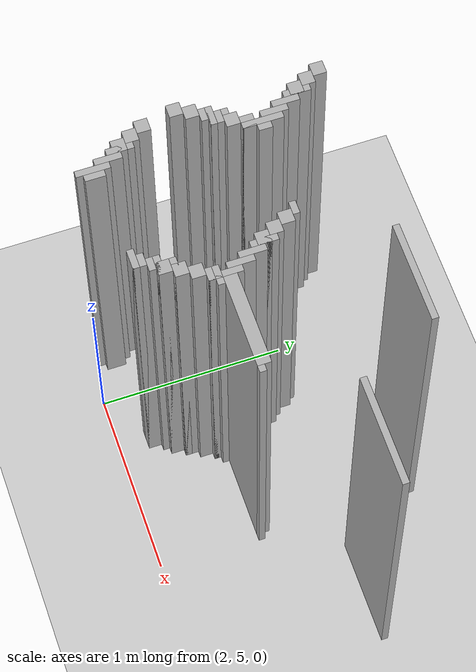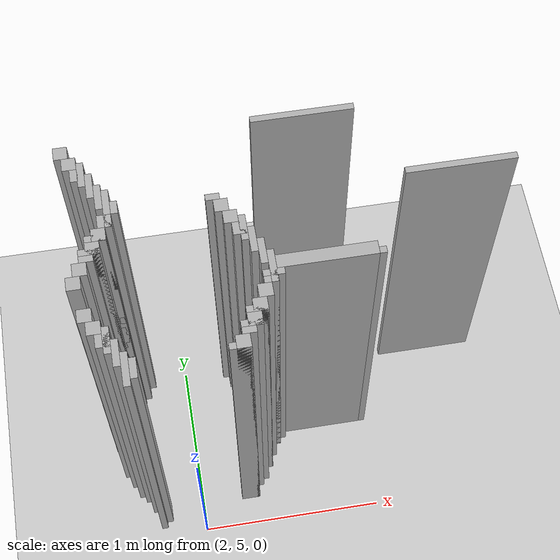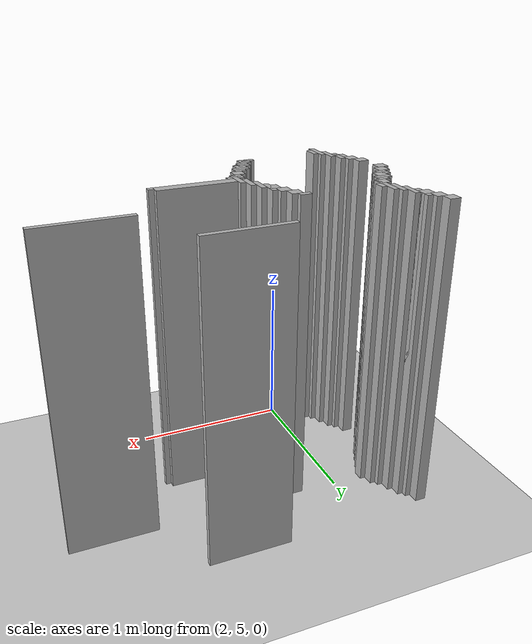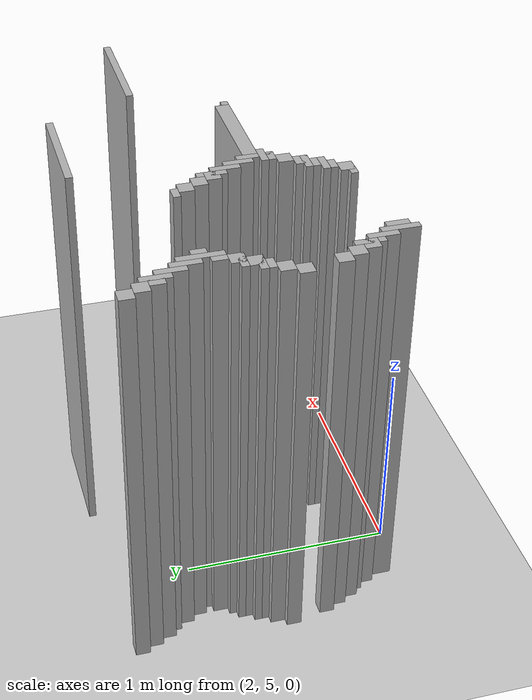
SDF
<sdf version="1.6">
 <world name="slam_world">
  <model name="ground_plane">
   <static>true</static>
   <link name="link">
    <collision name="collision">
     <geometry><plane><normal>0 0 1</normal><size>100 100</size></plane></geometry>
    </collision>
    <visual name="visual">
     <geometry><plane><normal>0 0 1</normal><size>100 100</size></plane></geometry>
     <material>
      <ambient>0.8 0.8 0.8 1</ambient>
      <diffuse>0.8 0.8 0.8 1</diffuse>
      <specular>0.8 0.8 0.8 1</specular>
     </material>
    </visual>
   </link>
  </model>
  <model name="wall_3612">
   <static>true</static>
   <pose>2.7668213457076565 6.386310904872389 1.0 0 0 0</pose>
   <link name="link">
    <collision name="collision">
     <geometry><box><size>0.5220417633410672 0.03480278422273782 2.0</size></box></geometry>
    </collision>
    <visual name="visual">
     <geometry><box><size>0.5220417633410672 0.03480278422273782 2.0</size></box></geometry>
     <material><ambient>0.5 0.5 0.5 1</ambient><diffuse>0.7 0.7 0.7 1</diffuse></material>
    </visual>
   </link>
  </model>
  <model name="wall_3622">
   <static>true</static>
   <pose>1.5661252900232019 6.334106728538282 1.0 0 0 0</pose>
   <link name="link">
    <collision name="collision">
     <geometry><box><size>0.06960556844547564 0.06960556844547564 2.0</size></box></geometry>
    </collision>
    <visual name="visual">
     <geometry><box><size>0.06960556844547564 0.06960556844547564 2.0</size></box></geometry>
     <material><ambient>0.5 0.5 0.5 1</ambient><diffuse>0.7 0.7 0.7 1</diffuse></material>
    </visual>
   </link>
  </model>
  <model name="wall_3644">
   <static>true</static>
   <pose>1.6009280742459395 6.2645011600928076 1.0 0 0 0</pose>
   <link name="link">
    <collision name="collision">
     <geometry><box><size>0.06960556844547564 0.06960556844547564 2.0</size></box></geometry>
    </collision>
    <visual name="visual">
     <geometry><box><size>0.06960556844547564 0.06960556844547564 2.0</size></box></geometry>
     <material><ambient>0.5 0.5 0.5 1</ambient><diffuse>0.7 0.7 0.7 1</diffuse></material>
    </visual>
   </link>
  </model>
  <model name="wall_3657">
   <static>true</static>
   <pose>1.6531322505800463 6.194895591647332 1.0 0 0 0</pose>
   <link name="link">
    <collision name="collision">
     <geometry><box><size>0.03480278422273782 0.13921113689095127 2.0</size></box></geometry>
    </collision>
    <visual name="visual">
     <geometry><box><size>0.03480278422273782 0.13921113689095127 2.0</size></box></geometry>
     <material><ambient>0.5 0.5 0.5 1</ambient><diffuse>0.7 0.7 0.7 1</diffuse></material>
    </visual>
   </link>
  </model>
  <model name="wall_3670">
   <static>true</static>
   <pose>1.6357308584686774 6.194895591647332 1.0 0 0 0</pose>
   <link name="link">
    <collision name="collision">
     <geometry><box><size>0.06960556844547564 0.06960556844547564 2.0</size></box></geometry>
    </collision>
    <visual name="visual">
     <geometry><box><size>0.06960556844547564 0.06960556844547564 2.0</size></box></geometry>
     <material><ambient>0.5 0.5 0.5 1</ambient><diffuse>0.7 0.7 0.7 1</diffuse></material>
    </visual>
   </link>
  </model>
  <model name="wall_3683">
   <static>true</static>
   <pose>1.6879350348027842 6.125290023201856 1.0 0 0 0</pose>
   <link name="link">
    <collision name="collision">
     <geometry><box><size>0.03480278422273782 0.13921113689095127 2.0</size></box></geometry>
    </collision>
    <visual name="visual">
     <geometry><box><size>0.03480278422273782 0.13921113689095127 2.0</size></box></geometry>
     <material><ambient>0.5 0.5 0.5 1</ambient><diffuse>0.7 0.7 0.7 1</diffuse></material>
    </visual>
   </link>
  </model>
  <model name="wall_3701">
   <static>true</static>
   <pose>1.722737819025522 6.05568445475638 1.0 0 0 0</pose>
   <link name="link">
    <collision name="collision">
     <geometry><box><size>0.03480278422273782 0.13921113689095127 2.0</size></box></geometry>
    </collision>
    <visual name="visual">
     <geometry><box><size>0.03480278422273782 0.13921113689095127 2.0</size></box></geometry>
     <material><ambient>0.5 0.5 0.5 1</ambient><diffuse>0.7 0.7 0.7 1</diffuse></material>
    </visual>
   </link>
  </model>
  <model name="wall_3714">
   <static>true</static>
   <pose>1.75754060324826 5.986078886310905 1.0 0 0 0</pose>
   <link name="link">
    <collision name="collision">
     <geometry><box><size>0.03480278422273782 0.2088167053364269 2.0</size></box></geometry>
    </collision>
    <visual name="visual">
     <geometry><box><size>0.03480278422273782 0.2088167053364269 2.0</size></box></geometry>
     <material><ambient>0.5 0.5 0.5 1</ambient><diffuse>0.7 0.7 0.7 1</diffuse></material>
    </visual>
   </link>
  </model>
  <model name="wall_3732">
   <static>true</static>
   <pose>1.7923433874709975 5.986078886310905 1.0 0 0 0</pose>
   <link name="link">
    <collision name="collision">
     <geometry><box><size>0.03480278422273782 0.06960556844547564 2.0</size></box></geometry>
    </collision>
    <visual name="visual">
     <geometry><box><size>0.03480278422273782 0.06960556844547564 2.0</size></box></geometry>
     <material><ambient>0.5 0.5 0.5 1</ambient><diffuse>0.7 0.7 0.7 1</diffuse></material>
    </visual>
   </link>
  </model>
  <model name="wall_3743">
   <static>true</static>
   <pose>2.262180974477958 5.968677494199536 1.0 0 0 0</pose>
   <link name="link">
    <collision name="collision">
     <geometry><box><size>0.06960556844547564 0.03480278422273782 2.0</size></box></geometry>
    </collision>
    <visual name="visual">
     <geometry><box><size>0.06960556844547564 0.03480278422273782 2.0</size></box></geometry>
     <material><ambient>0.5 0.5 0.5 1</ambient><diffuse>0.7 0.7 0.7 1</diffuse></material>
    </visual>
   </link>
  </model>
  <model name="wall_3744">
   <static>true</static>
   <pose>3.480278422273782 5.968677494199536 1.0 0 0 0</pose>
   <link name="link">
    <collision name="collision">
     <geometry><box><size>0.5568445475638051 0.03480278422273782 2.0</size></box></geometry>
    </collision>
    <visual name="visual">
     <geometry><box><size>0.5568445475638051 0.03480278422273782 2.0</size></box></geometry>
     <material><ambient>0.5 0.5 0.5 1</ambient><diffuse>0.7 0.7 0.7 1</diffuse></material>
    </visual>
   </link>
  </model>
  <model name="wall_3753">
   <static>true</static>
   <pose>1.740139211136891 5.916473317865429 1.0 0 0 0</pose>
   <link name="link">
    <collision name="collision">
     <geometry><box><size>0.06960556844547564 0.06960556844547564 2.0</size></box></geometry>
    </collision>
    <visual name="visual">
     <geometry><box><size>0.06960556844547564 0.06960556844547564 2.0</size></box></geometry>
     <material><ambient>0.5 0.5 0.5 1</ambient><diffuse>0.7 0.7 0.7 1</diffuse></material>
    </visual>
   </link>
  </model>
  <model name="wall_3754">
   <static>true</static>
   <pose>2.296983758700696 5.916473317865429 1.0 0 0 0</pose>
   <link name="link">
    <collision name="collision">
     <geometry><box><size>0.06960556844547564 0.06960556844547564 2.0</size></box></geometry>
    </collision>
    <visual name="visual">
     <geometry><box><size>0.06960556844547564 0.06960556844547564 2.0</size></box></geometry>
     <material><ambient>0.5 0.5 0.5 1</ambient><diffuse>0.7 0.7 0.7 1</diffuse></material>
    </visual>
   </link>
  </model>
  <model name="wall_3772">
   <static>true</static>
   <pose>1.705336426914153 5.846867749419953 1.0 0 0 0</pose>
   <link name="link">
    <collision name="collision">
     <geometry><box><size>0.06960556844547564 0.06960556844547564 2.0</size></box></geometry>
    </collision>
    <visual name="visual">
     <geometry><box><size>0.06960556844547564 0.06960556844547564 2.0</size></box></geometry>
     <material><ambient>0.5 0.5 0.5 1</ambient><diffuse>0.7 0.7 0.7 1</diffuse></material>
    </visual>
   </link>
  </model>
  <model name="wall_3773">
   <static>true</static>
   <pose>2.331786542923434 5.846867749419953 1.0 0 0 0</pose>
   <link name="link">
    <collision name="collision">
     <geometry><box><size>0.06960556844547564 0.06960556844547564 2.0</size></box></geometry>
    </collision>
    <visual name="visual">
     <geometry><box><size>0.06960556844547564 0.06960556844547564 2.0</size></box></geometry>
     <material><ambient>0.5 0.5 0.5 1</ambient><diffuse>0.7 0.7 0.7 1</diffuse></material>
    </visual>
   </link>
  </model>
  <model name="wall_3785">
   <static>true</static>
   <pose>1.6879350348027842 5.8294663573085845 1.0 0 0 0</pose>
   <link name="link">
    <collision name="collision">
     <geometry><box><size>0.10440835266821345 0.03480278422273782 2.0</size></box></geometry>
    </collision>
    <visual name="visual">
     <geometry><box><size>0.10440835266821345 0.03480278422273782 2.0</size></box></geometry>
     <material><ambient>0.5 0.5 0.5 1</ambient><diffuse>0.7 0.7 0.7 1</diffuse></material>
    </visual>
   </link>
  </model>
  <model name="wall_3786">
   <static>true</static>
   <pose>2.3839907192575405 5.7772621809744775 1.0 0 0 0</pose>
   <link name="link">
    <collision name="collision">
     <geometry><box><size>0.03480278422273782 0.13921113689095127 2.0</size></box></geometry>
    </collision>
    <visual name="visual">
     <geometry><box><size>0.03480278422273782 0.13921113689095127 2.0</size></box></geometry>
     <material><ambient>0.5 0.5 0.5 1</ambient><diffuse>0.7 0.7 0.7 1</diffuse></material>
    </visual>
   </link>
  </model>
  <model name="wall_3798">
   <static>true</static>
   <pose>1.6705336426914152 5.7772621809744775 1.0 0 0 0</pose>
   <link name="link">
    <collision name="collision">
     <geometry><box><size>0.06960556844547564 0.06960556844547564 2.0</size></box></geometry>
    </collision>
    <visual name="visual">
     <geometry><box><size>0.06960556844547564 0.06960556844547564 2.0</size></box></geometry>
     <material><ambient>0.5 0.5 0.5 1</ambient><diffuse>0.7 0.7 0.7 1</diffuse></material>
    </visual>
   </link>
  </model>
  <model name="wall_3799">
   <static>true</static>
   <pose>2.3665893271461718 5.7772621809744775 1.0 0 0 0</pose>
   <link name="link">
    <collision name="collision">
     <geometry><box><size>0.06960556844547564 0.06960556844547564 2.0</size></box></geometry>
    </collision>
    <visual name="visual">
     <geometry><box><size>0.06960556844547564 0.06960556844547564 2.0</size></box></geometry>
     <material><ambient>0.5 0.5 0.5 1</ambient><diffuse>0.7 0.7 0.7 1</diffuse></material>
    </visual>
   </link>
  </model>
  <model name="wall_3810">
   <static>true</static>
   <pose>1.6531322505800463 5.759860788863109 1.0 0 0 0</pose>
   <link name="link">
    <collision name="collision">
     <geometry><box><size>0.10440835266821345 0.03480278422273782 2.0</size></box></geometry>
    </collision>
    <visual name="visual">
     <geometry><box><size>0.10440835266821345 0.03480278422273782 2.0</size></box></geometry>
     <material><ambient>0.5 0.5 0.5 1</ambient><diffuse>0.7 0.7 0.7 1</diffuse></material>
    </visual>
   </link>
  </model>
  <model name="wall_3811">
   <static>true</static>
   <pose>2.4187935034802783 5.707656612529002 1.0 0 0 0</pose>
   <link name="link">
    <collision name="collision">
     <geometry><box><size>0.03480278422273782 0.13921113689095127 2.0</size></box></geometry>
    </collision>
    <visual name="visual">
     <geometry><box><size>0.03480278422273782 0.13921113689095127 2.0</size></box></geometry>
     <material><ambient>0.5 0.5 0.5 1</ambient><diffuse>0.7 0.7 0.7 1</diffuse></material>
    </visual>
   </link>
  </model>
  <model name="wall_3823">
   <static>true</static>
   <pose>1.6357308584686774 5.725058004640371 1.0 0 0 0</pose>
   <link name="link">
    <collision name="collision">
     <geometry><box><size>0.06960556844547564 0.03480278422273782 2.0</size></box></geometry>
    </collision>
    <visual name="visual">
     <geometry><box><size>0.06960556844547564 0.03480278422273782 2.0</size></box></geometry>
     <material><ambient>0.5 0.5 0.5 1</ambient><diffuse>0.7 0.7 0.7 1</diffuse></material>
    </visual>
   </link>
  </model>
  <model name="wall_3829">
   <static>true</static>
   <pose>1.6009280742459395 5.672853828306264 1.0 0 0 0</pose>
   <link name="link">
    <collision name="collision">
     <geometry><box><size>0.06960556844547564 0.06960556844547564 2.0</size></box></geometry>
    </collision>
    <visual name="visual">
     <geometry><box><size>0.06960556844547564 0.06960556844547564 2.0</size></box></geometry>
     <material><ambient>0.5 0.5 0.5 1</ambient><diffuse>0.7 0.7 0.7 1</diffuse></material>
    </visual>
   </link>
  </model>
  <model name="wall_3830">
   <static>true</static>
   <pose>2.453596287703016 5.638051044083526 1.0 0 0 0</pose>
   <link name="link">
    <collision name="collision">
     <geometry><box><size>0.03480278422273782 0.13921113689095127 2.0</size></box></geometry>
    </collision>
    <visual name="visual">
     <geometry><box><size>0.03480278422273782 0.13921113689095127 2.0</size></box></geometry>
     <material><ambient>0.5 0.5 0.5 1</ambient><diffuse>0.7 0.7 0.7 1</diffuse></material>
    </visual>
   </link>
  </model>
  <model name="wall_3842">
   <static>true</static>
   <pose>1.5661252900232019 5.603248259860789 1.0 0 0 0</pose>
   <link name="link">
    <collision name="collision">
     <geometry><box><size>0.06960556844547564 0.06960556844547564 2.0</size></box></geometry>
    </collision>
    <visual name="visual">
     <geometry><box><size>0.06960556844547564 0.06960556844547564 2.0</size></box></geometry>
     <material><ambient>0.5 0.5 0.5 1</ambient><diffuse>0.7 0.7 0.7 1</diffuse></material>
    </visual>
   </link>
  </model>
  <model name="wall_3843">
   <static>true</static>
   <pose>2.488399071925754 5.551044083526682 1.0 0 0 0</pose>
   <link name="link">
    <collision name="collision">
     <geometry><box><size>0.03480278422273782 0.17401392111368907 2.0</size></box></geometry>
    </collision>
    <visual name="visual">
     <geometry><box><size>0.03480278422273782 0.17401392111368907 2.0</size></box></geometry>
     <material><ambient>0.5 0.5 0.5 1</ambient><diffuse>0.7 0.7 0.7 1</diffuse></material>
    </visual>
   </link>
  </model>
  <model name="wall_3856">
   <static>true</static>
   <pose>2.7494199535962878 5.56844547563805 1.0 0 0 0</pose>
   <link name="link">
    <collision name="collision">
     <geometry><box><size>0.4872389791183295 0.06960556844547564 2.0</size></box></geometry>
    </collision>
    <visual name="visual">
     <geometry><box><size>0.4872389791183295 0.06960556844547564 2.0</size></box></geometry>
     <material><ambient>0.5 0.5 0.5 1</ambient><diffuse>0.7 0.7 0.7 1</diffuse></material>
    </visual>
   </link>
  </model>
  <model name="wall_3870">
   <static>true</static>
   <pose>3.010440835266821 5.551044083526682 1.0 0 0 0</pose>
   <link name="link">
    <collision name="collision">
     <geometry><box><size>0.03480278422273782 0.03480278422273782 2.0</size></box></geometry>
    </collision>
    <visual name="visual">
     <geometry><box><size>0.03480278422273782 0.03480278422273782 2.0</size></box></geometry>
     <material><ambient>0.5 0.5 0.5 1</ambient><diffuse>0.7 0.7 0.7 1</diffuse></material>
    </visual>
   </link>
  </model>
  <model name="wall_3881">
   <static>true</static>
   <pose>2.488399071925754 5.516241299303944 1.0 0 0 0</pose>
   <link name="link">
    <collision name="collision">
     <geometry><box><size>0.10440835266821345 0.03480278422273782 2.0</size></box></geometry>
    </collision>
    <visual name="visual">
     <geometry><box><size>0.10440835266821345 0.03480278422273782 2.0</size></box></geometry>
     <material><ambient>0.5 0.5 0.5 1</ambient><diffuse>0.7 0.7 0.7 1</diffuse></material>
    </visual>
   </link>
  </model>
  <model name="wall_3896">
   <static>true</static>
   <pose>2.470997679814385 5.481438515081206 1.0 0 0 0</pose>
   <link name="link">
    <collision name="collision">
     <geometry><box><size>0.06960556844547564 0.03480278422273782 2.0</size></box></geometry>
    </collision>
    <visual name="visual">
     <geometry><box><size>0.06960556844547564 0.03480278422273782 2.0</size></box></geometry>
     <material><ambient>0.5 0.5 0.5 1</ambient><diffuse>0.7 0.7 0.7 1</diffuse></material>
    </visual>
   </link>
  </model>
  <model name="wall_3908">
   <static>true</static>
   <pose>1.6009280742459395 5.4292343387471 1.0 0 0 0</pose>
   <link name="link">
    <collision name="collision">
     <geometry><box><size>0.06960556844547564 0.06960556844547564 2.0</size></box></geometry>
    </collision>
    <visual name="visual">
     <geometry><box><size>0.06960556844547564 0.06960556844547564 2.0</size></box></geometry>
     <material><ambient>0.5 0.5 0.5 1</ambient><diffuse>0.7 0.7 0.7 1</diffuse></material>
    </visual>
   </link>
  </model>
  <model name="wall_3909">
   <static>true</static>
   <pose>2.436194895591647 5.4292343387471 1.0 0 0 0</pose>
   <link name="link">
    <collision name="collision">
     <geometry><box><size>0.06960556844547564 0.06960556844547564 2.0</size></box></geometry>
    </collision>
    <visual name="visual">
     <geometry><box><size>0.06960556844547564 0.06960556844547564 2.0</size></box></geometry>
     <material><ambient>0.5 0.5 0.5 1</ambient><diffuse>0.7 0.7 0.7 1</diffuse></material>
    </visual>
   </link>
  </model>
  <model name="wall_3921">
   <static>true</static>
   <pose>1.6357308584686774 5.359628770301624 1.0 0 0 0</pose>
   <link name="link">
    <collision name="collision">
     <geometry><box><size>0.06960556844547564 0.06960556844547564 2.0</size></box></geometry>
    </collision>
    <visual name="visual">
     <geometry><box><size>0.06960556844547564 0.06960556844547564 2.0</size></box></geometry>
     <material><ambient>0.5 0.5 0.5 1</ambient><diffuse>0.7 0.7 0.7 1</diffuse></material>
    </visual>
   </link>
  </model>
  <model name="wall_3922">
   <static>true</static>
   <pose>2.4013921113689096 5.359628770301624 1.0 0 0 0</pose>
   <link name="link">
    <collision name="collision">
     <geometry><box><size>0.06960556844547564 0.06960556844547564 2.0</size></box></geometry>
    </collision>
    <visual name="visual">
     <geometry><box><size>0.06960556844547564 0.06960556844547564 2.0</size></box></geometry>
     <material><ambient>0.5 0.5 0.5 1</ambient><diffuse>0.7 0.7 0.7 1</diffuse></material>
    </visual>
   </link>
  </model>
  <model name="wall_3934">
   <static>true</static>
   <pose>1.6879350348027842 5.290023201856148 1.0 0 0 0</pose>
   <link name="link">
    <collision name="collision">
     <geometry><box><size>0.03480278422273782 0.13921113689095127 2.0</size></box></geometry>
    </collision>
    <visual name="visual">
     <geometry><box><size>0.03480278422273782 0.13921113689095127 2.0</size></box></geometry>
     <material><ambient>0.5 0.5 0.5 1</ambient><diffuse>0.7 0.7 0.7 1</diffuse></material>
    </visual>
   </link>
  </model>
  <model name="wall_3935">
   <static>true</static>
   <pose>2.3839907192575405 5.342227378190255 1.0 0 0 0</pose>
   <link name="link">
    <collision name="collision">
     <geometry><box><size>0.10440835266821345 0.03480278422273782 2.0</size></box></geometry>
    </collision>
    <visual name="visual">
     <geometry><box><size>0.10440835266821345 0.03480278422273782 2.0</size></box></geometry>
     <material><ambient>0.5 0.5 0.5 1</ambient><diffuse>0.7 0.7 0.7 1</diffuse></material>
    </visual>
   </link>
  </model>
  <model name="wall_3946">
   <static>true</static>
   <pose>1.6705336426914152 5.290023201856148 1.0 0 0 0</pose>
   <link name="link">
    <collision name="collision">
     <geometry><box><size>0.06960556844547564 0.06960556844547564 2.0</size></box></geometry>
    </collision>
    <visual name="visual">
     <geometry><box><size>0.06960556844547564 0.06960556844547564 2.0</size></box></geometry>
     <material><ambient>0.5 0.5 0.5 1</ambient><diffuse>0.7 0.7 0.7 1</diffuse></material>
    </visual>
   </link>
  </model>
  <model name="wall_3947">
   <static>true</static>
   <pose>2.3665893271461718 5.290023201856148 1.0 0 0 0</pose>
   <link name="link">
    <collision name="collision">
     <geometry><box><size>0.06960556844547564 0.06960556844547564 2.0</size></box></geometry>
    </collision>
    <visual name="visual">
     <geometry><box><size>0.06960556844547564 0.06960556844547564 2.0</size></box></geometry>
     <material><ambient>0.5 0.5 0.5 1</ambient><diffuse>0.7 0.7 0.7 1</diffuse></material>
    </visual>
   </link>
  </model>
  <model name="wall_3955">
   <static>true</static>
   <pose>1.722737819025522 5.220417633410673 1.0 0 0 0</pose>
   <link name="link">
    <collision name="collision">
     <geometry><box><size>0.03480278422273782 0.13921113689095127 2.0</size></box></geometry>
    </collision>
    <visual name="visual">
     <geometry><box><size>0.03480278422273782 0.13921113689095127 2.0</size></box></geometry>
     <material><ambient>0.5 0.5 0.5 1</ambient><diffuse>0.7 0.7 0.7 1</diffuse></material>
    </visual>
   </link>
  </model>
  <model name="wall_3956">
   <static>true</static>
   <pose>2.3491879350348026 5.27262180974478 1.0 0 0 0</pose>
   <link name="link">
    <collision name="collision">
     <geometry><box><size>0.10440835266821345 0.03480278422273782 2.0</size></box></geometry>
    </collision>
    <visual name="visual">
     <geometry><box><size>0.10440835266821345 0.03480278422273782 2.0</size></box></geometry>
     <material><ambient>0.5 0.5 0.5 1</ambient><diffuse>0.7 0.7 0.7 1</diffuse></material>
    </visual>
   </link>
  </model>
  <model name="wall_3967">
   <static>true</static>
   <pose>2.331786542923434 5.237819025522041 1.0 0 0 0</pose>
   <link name="link">
    <collision name="collision">
     <geometry><box><size>0.06960556844547564 0.03480278422273782 2.0</size></box></geometry>
    </collision>
    <visual name="visual">
     <geometry><box><size>0.06960556844547564 0.03480278422273782 2.0</size></box></geometry>
     <material><ambient>0.5 0.5 0.5 1</ambient><diffuse>0.7 0.7 0.7 1</diffuse></material>
    </visual>
   </link>
  </model>
  <model name="wall_3975">
   <static>true</static>
   <pose>1.75754060324826 5.133410672853828 1.0 0 0 0</pose>
   <link name="link">
    <collision name="collision">
     <geometry><box><size>0.03480278422273782 0.17401392111368907 2.0</size></box></geometry>
    </collision>
    <visual name="visual">
     <geometry><box><size>0.03480278422273782 0.17401392111368907 2.0</size></box></geometry>
     <material><ambient>0.5 0.5 0.5 1</ambient><diffuse>0.7 0.7 0.7 1</diffuse></material>
    </visual>
   </link>
  </model>
  <model name="wall_3976">
   <static>true</static>
   <pose>2.296983758700696 5.185614849187935 1.0 0 0 0</pose>
   <link name="link">
    <collision name="collision">
     <geometry><box><size>0.06960556844547564 0.06960556844547564 2.0</size></box></geometry>
    </collision>
    <visual name="visual">
     <geometry><box><size>0.06960556844547564 0.06960556844547564 2.0</size></box></geometry>
     <material><ambient>0.5 0.5 0.5 1</ambient><diffuse>0.7 0.7 0.7 1</diffuse></material>
    </visual>
   </link>
  </model>
  <model name="wall_3988">
   <static>true</static>
   <pose>1.7923433874709975 5.133410672853828 1.0 0 0 0</pose>
   <link name="link">
    <collision name="collision">
     <geometry><box><size>0.03480278422273782 0.10440835266821345 2.0</size></box></geometry>
    </collision>
    <visual name="visual">
     <geometry><box><size>0.03480278422273782 0.10440835266821345 2.0</size></box></geometry>
     <material><ambient>0.5 0.5 0.5 1</ambient><diffuse>0.7 0.7 0.7 1</diffuse></material>
    </visual>
   </link>
  </model>
  <model name="wall_3989">
   <static>true</static>
   <pose>2.279582366589327 5.168213457076566 1.0 0 0 0</pose>
   <link name="link">
    <collision name="collision">
     <geometry><box><size>0.10440835266821345 0.03480278422273782 2.0</size></box></geometry>
    </collision>
    <visual name="visual">
     <geometry><box><size>0.10440835266821345 0.03480278422273782 2.0</size></box></geometry>
     <material><ambient>0.5 0.5 0.5 1</ambient><diffuse>0.7 0.7 0.7 1</diffuse></material>
    </visual>
   </link>
  </model>
 </world>
</sdf>
